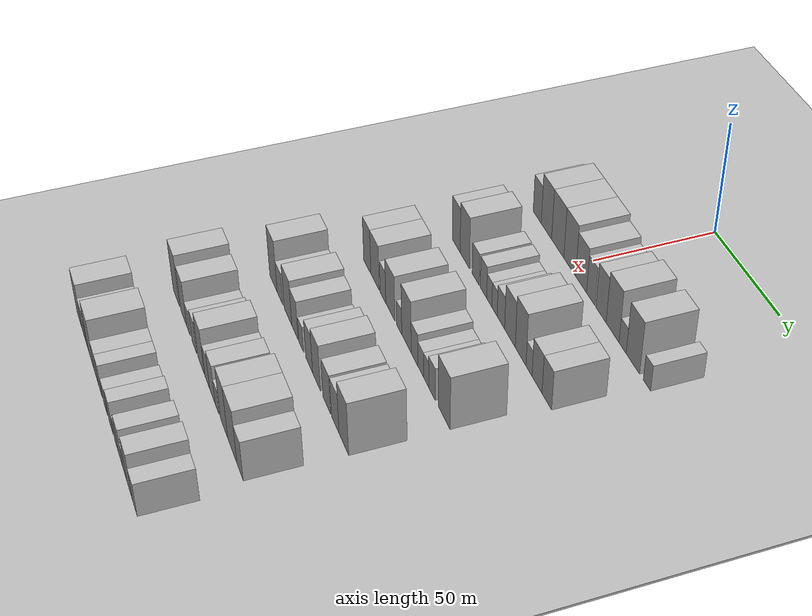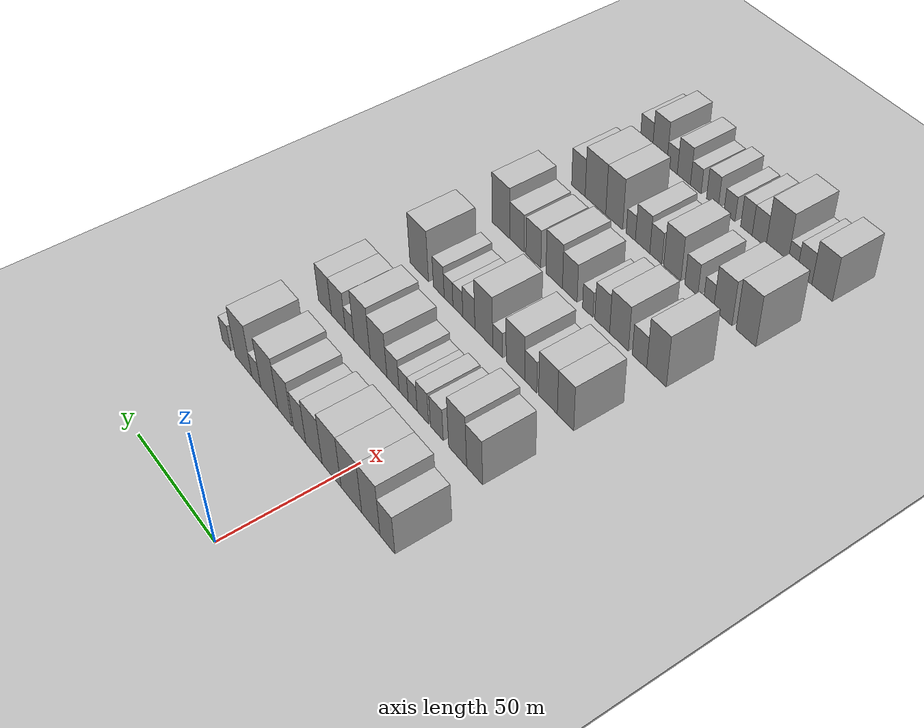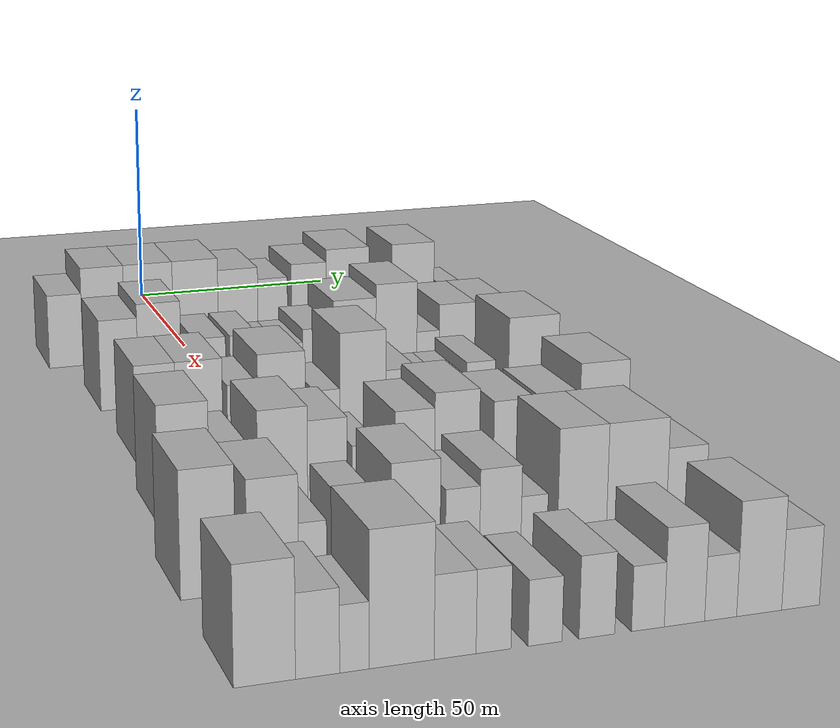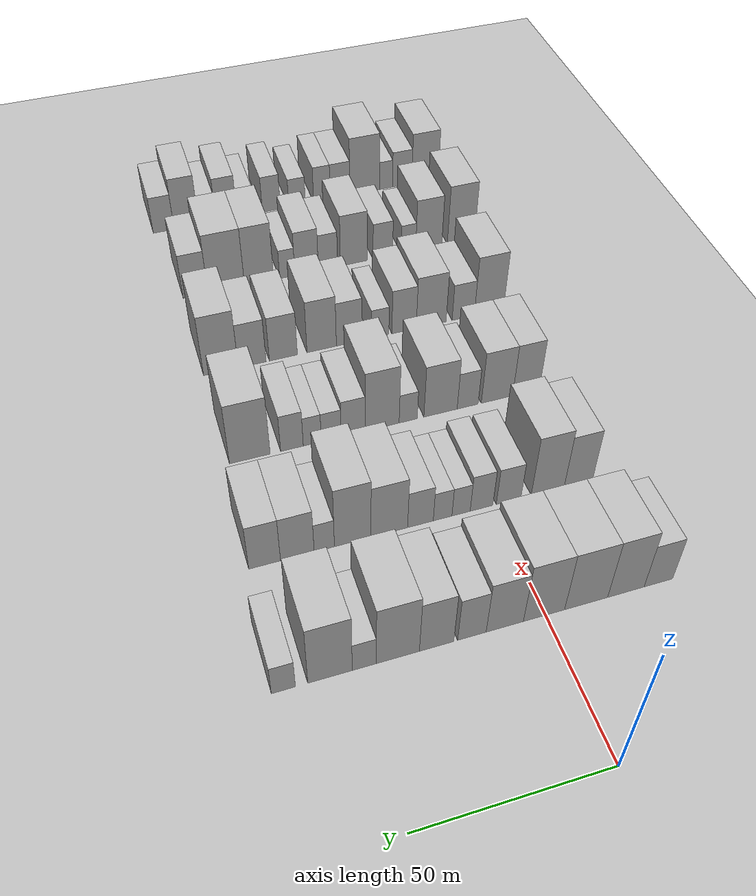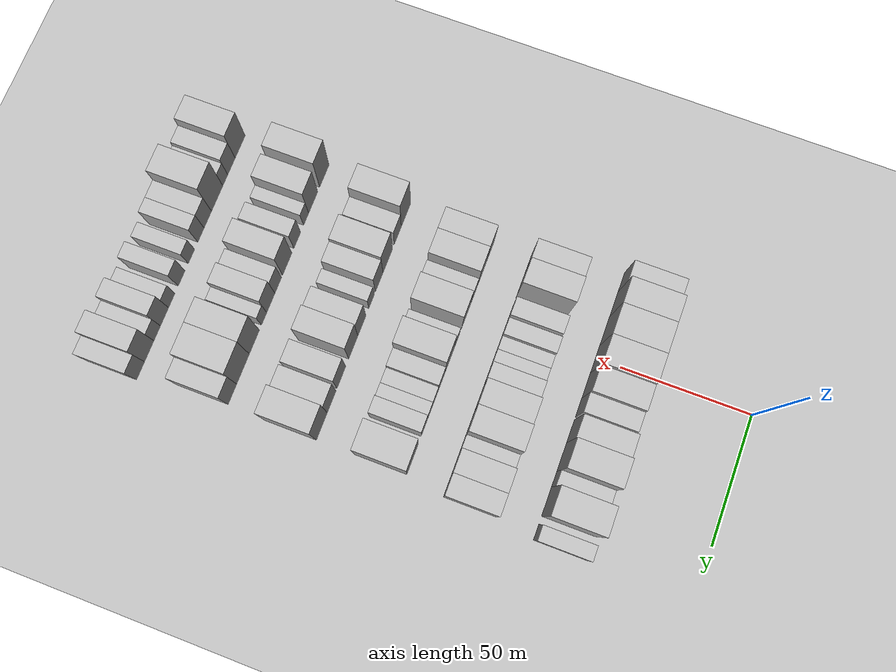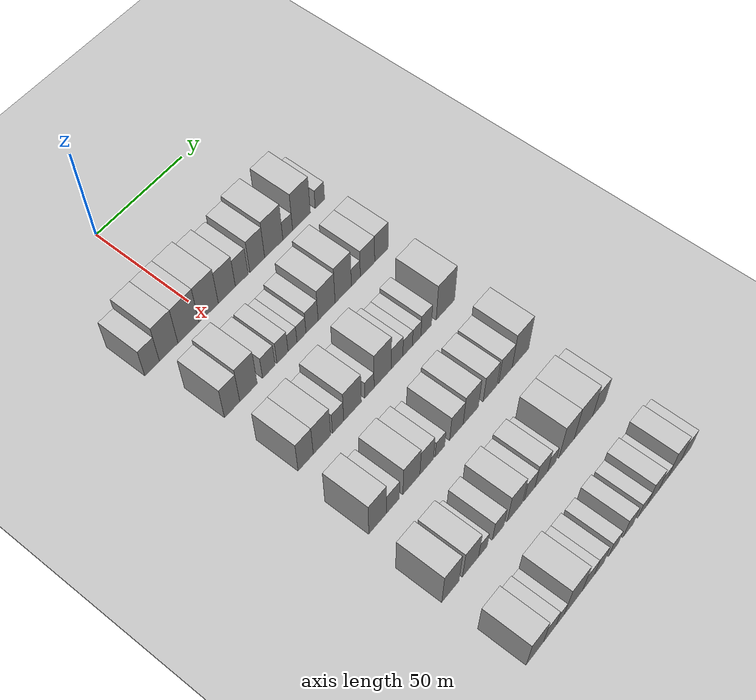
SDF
<sdf version="1.6">
 <world name="default">
  <include><name>ground_plane_1</name><uri>model://HANNAS_ground_plane</uri></include>
  <include>
   <name>ground_plane_2</name>
   <uri>model://HANNAS_ground_plane</uri>
   <pose>100 0 0  0 0 0</pose>
  </include>
  <model name="building_55">
   <static>1</static>
   <pose>50.0000 -30.7081 0 0.000000 0.000000 0.000000</pose>
   <link name="link">
    <pose>0 0 9.00 0 0 0</pose>
    <collision name="collision"><geometry><box><size>20.0000 7.9828 18.0000</size></box></geometry></collision>
    <visual name="visual">
     <cast_shadows>0</cast_shadows>
     <geometry><box><size>20.0000 7.9828 18.0000</size></box></geometry>
     <material>
      <script>
       <uri>model://HANNAS_wall/materials/scripts</uri>
       <uri>model://HANNAS_wall/materials/textures</uri>
       <name>vrc/HANNAS_wall</name>
      </script>
     </material>
    </visual>
   </link>
  </model>
  <model name="building_56">
   <static>1</static>
   <pose>50.0000 -21.6612 0 0.000000 0.000000 0.000000</pose>
   <link name="link">
    <pose>0 0 12.00 0 0 0</pose>
    <collision name="collision"><geometry><box><size>20.0000 10.1111 24.0000</size></box></geometry></collision>
    <visual name="visual">
     <cast_shadows>0</cast_shadows>
     <geometry><box><size>20.0000 10.1111 24.0000</size></box></geometry>
     <material>
      <script>
       <uri>model://HANNAS_wall/materials/scripts</uri>
       <uri>model://HANNAS_wall/materials/textures</uri>
       <name>vrc/HANNAS_wall</name>
      </script>
     </material>
    </visual>
   </link>
  </model>
  <model name="building_57">
   <static>1</static>
   <pose>50.0000 -10.7391 0 0.000000 0.000000 0.000000</pose>
   <link name="link">
    <pose>0 0 12.00 0 0 0</pose>
    <collision name="collision"><geometry><box><size>20.0000 11.7331 24.0000</size></box></geometry></collision>
    <visual name="visual">
     <cast_shadows>0</cast_shadows>
     <geometry><box><size>20.0000 11.7331 24.0000</size></box></geometry>
     <material>
      <script>
       <uri>model://HANNAS_wall/materials/scripts</uri>
       <uri>model://HANNAS_wall/materials/textures</uri>
       <name>vrc/HANNAS_wall</name>
      </script>
     </material>
    </visual>
   </link>
  </model>
  <model name="building_58">
   <static>1</static>
   <pose>50.0000 0.6521 0 0.000000 0.000000 0.000000</pose>
   <link name="link">
    <pose>0 0 12.00 0 0 0</pose>
    <collision name="collision"><geometry><box><size>20.0000 11.0493 24.0000</size></box></geometry></collision>
    <visual name="visual">
     <cast_shadows>0</cast_shadows>
     <geometry><box><size>20.0000 11.0493 24.0000</size></box></geometry>
     <material>
      <script>
       <uri>model://HANNAS_wall/materials/scripts</uri>
       <uri>model://HANNAS_wall/materials/textures</uri>
       <name>vrc/HANNAS_wall</name>
      </script>
     </material>
    </visual>
   </link>
  </model>
  <model name="building_59">
   <static>1</static>
   <pose>50.0000 11.0912 0 0.000000 0.000000 0.000000</pose>
   <link name="link">
    <pose>0 0 10.50 0 0 0</pose>
    <collision name="collision"><geometry><box><size>20.0000 9.8289 21.0000</size></box></geometry></collision>
    <visual name="visual">
     <cast_shadows>0</cast_shadows>
     <geometry><box><size>20.0000 9.8289 21.0000</size></box></geometry>
     <material>
      <script>
       <uri>model://HANNAS_wall/materials/scripts</uri>
       <uri>model://HANNAS_wall/materials/textures</uri>
       <name>vrc/HANNAS_wall</name>
      </script>
     </material>
    </visual>
   </link>
  </model>
  <model name="building_60">
   <static>1</static>
   <pose>50.0000 19.7149 0 0.000000 0.000000 0.000000</pose>
   <link name="link">
    <pose>0 0 9.00 0 0 0</pose>
    <collision name="collision"><geometry><box><size>20.0000 7.4185 18.0000</size></box></geometry></collision>
    <visual name="visual">
     <cast_shadows>0</cast_shadows>
     <geometry><box><size>20.0000 7.4185 18.0000</size></box></geometry>
     <material>
      <script>
       <uri>model://HANNAS_wall/materials/scripts</uri>
       <uri>model://HANNAS_wall/materials/textures</uri>
       <name>vrc/HANNAS_wall</name>
      </script>
     </material>
    </visual>
   </link>
  </model>
  <model name="building_61">
   <static>1</static>
   <pose>50.0000 28.8338 0 0.000000 0.000000 0.000000</pose>
   <link name="link">
    <pose>0 0 10.50 0 0 0</pose>
    <collision name="collision"><geometry><box><size>20.0000 8.8193 21.0000</size></box></geometry></collision>
    <visual name="visual">
     <cast_shadows>0</cast_shadows>
     <geometry><box><size>20.0000 8.8193 21.0000</size></box></geometry>
     <material>
      <script>
       <uri>model://HANNAS_wall/materials/scripts</uri>
       <uri>model://HANNAS_wall/materials/textures</uri>
       <name>vrc/HANNAS_wall</name>
      </script>
     </material>
    </visual>
   </link>
  </model>
  <model name="building_62">
   <static>1</static>
   <pose>50.0000 38.7204 0 0.000000 0.000000 0.000000</pose>
   <link name="link">
    <pose>0 0 12.00 0 0 0</pose>
    <collision name="collision"><geometry><box><size>20.0000 10.9539 24.0000</size></box></geometry></collision>
    <visual name="visual">
     <cast_shadows>0</cast_shadows>
     <geometry><box><size>20.0000 10.9539 24.0000</size></box></geometry>
     <material>
      <script>
       <uri>model://HANNAS_wall/materials/scripts</uri>
       <uri>model://HANNAS_wall/materials/textures</uri>
       <name>vrc/HANNAS_wall</name>
      </script>
     </material>
    </visual>
   </link>
  </model>
  <model name="building_63">
   <static>1</static>
   <pose>50.0000 47.1609 0 0.000000 0.000000 0.000000</pose>
   <link name="link">
    <pose>0 0 6.00 0 0 0</pose>
    <collision name="collision"><geometry><box><size>20.0000 5.9271 12.0000</size></box></geometry></collision>
    <visual name="visual">
     <cast_shadows>0</cast_shadows>
     <geometry><box><size>20.0000 5.9271 12.0000</size></box></geometry>
     <material>
      <script>
       <uri>model://HANNAS_wall/materials/scripts</uri>
       <uri>model://HANNAS_wall/materials/textures</uri>
       <name>vrc/HANNAS_wall</name>
      </script>
     </material>
    </visual>
   </link>
  </model>
  <model name="building_64">
   <static>1</static>
   <pose>50.0000 55.5924 0 0.000000 0.000000 0.000000</pose>
   <link name="link">
    <pose>0 0 12.00 0 0 0</pose>
    <collision name="collision"><geometry><box><size>20.0000 10.9358 24.0000</size></box></geometry></collision>
    <visual name="visual">
     <cast_shadows>0</cast_shadows>
     <geometry><box><size>20.0000 10.9358 24.0000</size></box></geometry>
     <material>
      <script>
       <uri>model://HANNAS_wall/materials/scripts</uri>
       <uri>model://HANNAS_wall/materials/textures</uri>
       <name>vrc/HANNAS_wall</name>
      </script>
     </material>
    </visual>
   </link>
  </model>
  <model name="building_65">
   <static>1</static>
   <pose>50.0000 66.9774 0 0.000000 0.000000 0.000000</pose>
   <link name="link">
    <pose>0 0 6.00 0 0 0</pose>
    <collision name="collision"><geometry><box><size>20.0000 5.8342 12.0000</size></box></geometry></collision>
    <visual name="visual">
     <cast_shadows>0</cast_shadows>
     <geometry><box><size>20.0000 5.8342 12.0000</size></box></geometry>
     <material>
      <script>
       <uri>model://HANNAS_wall/materials/scripts</uri>
       <uri>model://HANNAS_wall/materials/textures</uri>
       <name>vrc/HANNAS_wall</name>
      </script>
     </material>
    </visual>
   </link>
  </model>
  <model name="building_188">
   <static>1</static>
   <pose>85.0000 -24.9480 0 0.000000 0.000000 0.000000</pose>
   <link name="link">
    <pose>0 0 10.50 0 0 0</pose>
    <collision name="collision"><geometry><box><size>20.0000 8.4653 21.0000</size></box></geometry></collision>
    <visual name="visual">
     <cast_shadows>0</cast_shadows>
     <geometry><box><size>20.0000 8.4653 21.0000</size></box></geometry>
     <material>
      <script>
       <uri>model://HANNAS_wall/materials/scripts</uri>
       <uri>model://HANNAS_wall/materials/textures</uri>
       <name>vrc/HANNAS_wall</name>
      </script>
     </material>
    </visual>
   </link>
  </model>
  <model name="building_189">
   <static>1</static>
   <pose>85.0000 -15.8539 0 0.000000 0.000000 0.000000</pose>
   <link name="link">
    <pose>0 0 12.00 0 0 0</pose>
    <collision name="collision"><geometry><box><size>20.0000 9.7229 24.0000</size></box></geometry></collision>
    <visual name="visual">
     <cast_shadows>0</cast_shadows>
     <geometry><box><size>20.0000 9.7229 24.0000</size></box></geometry>
     <material>
      <script>
       <uri>model://HANNAS_wall/materials/scripts</uri>
       <uri>model://HANNAS_wall/materials/textures</uri>
       <name>vrc/HANNAS_wall</name>
      </script>
     </material>
    </visual>
   </link>
  </model>
  <model name="building_190">
   <static>1</static>
   <pose>85.0000 -4.4233 0 0.000000 0.000000 0.000000</pose>
   <link name="link">
    <pose>0 0 7.50 0 0 0</pose>
    <collision name="collision"><geometry><box><size>20.0000 7.1381 15.0000</size></box></geometry></collision>
    <visual name="visual">
     <cast_shadows>0</cast_shadows>
     <geometry><box><size>20.0000 7.1381 15.0000</size></box></geometry>
     <material>
      <script>
       <uri>model://HANNAS_wall/materials/scripts</uri>
       <uri>model://HANNAS_wall/materials/textures</uri>
       <name>vrc/HANNAS_wall</name>
      </script>
     </material>
    </visual>
   </link>
  </model>
  <model name="building_191">
   <static>1</static>
   <pose>85.0000 3.3822 0 0.000000 0.000000 0.000000</pose>
   <link name="link">
    <pose>0 0 7.50 0 0 0</pose>
    <collision name="collision"><geometry><box><size>20.0000 6.4730 15.0000</size></box></geometry></collision>
    <visual name="visual">
     <cast_shadows>0</cast_shadows>
     <geometry><box><size>20.0000 6.4730 15.0000</size></box></geometry>
     <material>
      <script>
       <uri>model://HANNAS_wall/materials/scripts</uri>
       <uri>model://HANNAS_wall/materials/textures</uri>
       <name>vrc/HANNAS_wall</name>
      </script>
     </material>
    </visual>
   </link>
  </model>
  <model name="building_192">
   <static>1</static>
   <pose>85.0000 9.2058 0 0.000000 0.000000 0.000000</pose>
   <link name="link">
    <pose>0 0 6.00 0 0 0</pose>
    <collision name="collision"><geometry><box><size>20.0000 5.1743 12.0000</size></box></geometry></collision>
    <visual name="visual">
     <cast_shadows>0</cast_shadows>
     <geometry><box><size>20.0000 5.1743 12.0000</size></box></geometry>
     <material>
      <script>
       <uri>model://HANNAS_wall/materials/scripts</uri>
       <uri>model://HANNAS_wall/materials/textures</uri>
       <name>vrc/HANNAS_wall</name>
      </script>
     </material>
    </visual>
   </link>
  </model>
  <model name="building_193">
   <static>1</static>
   <pose>85.0000 14.4256 0 0.000000 0.000000 0.000000</pose>
   <link name="link">
    <pose>0 0 6.00 0 0 0</pose>
    <collision name="collision"><geometry><box><size>20.0000 5.2652 12.0000</size></box></geometry></collision>
    <visual name="visual">
     <cast_shadows>0</cast_shadows>
     <geometry><box><size>20.0000 5.2652 12.0000</size></box></geometry>
     <material>
      <script>
       <uri>model://HANNAS_wall/materials/scripts</uri>
       <uri>model://HANNAS_wall/materials/textures</uri>
       <name>vrc/HANNAS_wall</name>
      </script>
     </material>
    </visual>
   </link>
  </model>
  <model name="building_194">
   <static>1</static>
   <pose>85.0000 20.6503 0 0.000000 0.000000 0.000000</pose>
   <link name="link">
    <pose>0 0 7.50 0 0 0</pose>
    <collision name="collision"><geometry><box><size>20.0000 7.1842 15.0000</size></box></geometry></collision>
    <visual name="visual">
     <cast_shadows>0</cast_shadows>
     <geometry><box><size>20.0000 7.1842 15.0000</size></box></geometry>
     <material>
      <script>
       <uri>model://HANNAS_wall/materials/scripts</uri>
       <uri>model://HANNAS_wall/materials/textures</uri>
       <name>vrc/HANNAS_wall</name>
      </script>
     </material>
    </visual>
   </link>
  </model>
  <model name="building_195">
   <static>1</static>
   <pose>85.0000 29.2987 0 0.000000 0.000000 0.000000</pose>
   <link name="link">
    <pose>0 0 10.50 0 0 0</pose>
    <collision name="collision"><geometry><box><size>20.0000 10.1127 21.0000</size></box></geometry></collision>
    <visual name="visual">
     <cast_shadows>0</cast_shadows>
     <geometry><box><size>20.0000 10.1127 21.0000</size></box></geometry>
     <material>
      <script>
       <uri>model://HANNAS_wall/materials/scripts</uri>
       <uri>model://HANNAS_wall/materials/textures</uri>
       <name>vrc/HANNAS_wall</name>
      </script>
     </material>
    </visual>
   </link>
  </model>
  <model name="building_196">
   <static>1</static>
   <pose>85.0000 39.3096 0 0.000000 0.000000 0.000000</pose>
   <link name="link">
    <pose>0 0 12.00 0 0 0</pose>
    <collision name="collision"><geometry><box><size>20.0000 9.9090 24.0000</size></box></geometry></collision>
    <visual name="visual">
     <cast_shadows>0</cast_shadows>
     <geometry><box><size>20.0000 9.9090 24.0000</size></box></geometry>
     <material>
      <script>
       <uri>model://HANNAS_wall/materials/scripts</uri>
       <uri>model://HANNAS_wall/materials/textures</uri>
       <name>vrc/HANNAS_wall</name>
      </script>
     </material>
    </visual>
   </link>
  </model>
  <model name="building_197">
   <static>1</static>
   <pose>85.0000 46.9934 0 0.000000 0.000000 0.000000</pose>
   <link name="link">
    <pose>0 0 6.00 0 0 0</pose>
    <collision name="collision"><geometry><box><size>20.0000 5.4587 12.0000</size></box></geometry></collision>
    <visual name="visual">
     <cast_shadows>0</cast_shadows>
     <geometry><box><size>20.0000 5.4587 12.0000</size></box></geometry>
     <material>
      <script>
       <uri>model://HANNAS_wall/materials/scripts</uri>
       <uri>model://HANNAS_wall/materials/textures</uri>
       <name>vrc/HANNAS_wall</name>
      </script>
     </material>
    </visual>
   </link>
  </model>
  <model name="building_198">
   <static>1</static>
   <pose>85.0000 54.1948 0 0.000000 0.000000 0.000000</pose>
   <link name="link">
    <pose>0 0 9.00 0 0 0</pose>
    <collision name="collision"><geometry><box><size>20.0000 8.9439 18.0000</size></box></geometry></collision>
    <visual name="visual">
     <cast_shadows>0</cast_shadows>
     <geometry><box><size>20.0000 8.9439 18.0000</size></box></geometry>
     <material>
      <script>
       <uri>model://HANNAS_wall/materials/scripts</uri>
       <uri>model://HANNAS_wall/materials/textures</uri>
       <name>vrc/HANNAS_wall</name>
      </script>
     </material>
    </visual>
   </link>
  </model>
  <model name="building_199">
   <static>1</static>
   <pose>85.0000 62.8538 0 0.000000 0.000000 0.000000</pose>
   <link name="link">
    <pose>0 0 9.00 0 0 0</pose>
    <collision name="collision"><geometry><box><size>20.0000 8.3741 18.0000</size></box></geometry></collision>
    <visual name="visual">
     <cast_shadows>0</cast_shadows>
     <geometry><box><size>20.0000 8.3741 18.0000</size></box></geometry>
     <material>
      <script>
       <uri>model://HANNAS_wall/materials/scripts</uri>
       <uri>model://HANNAS_wall/materials/textures</uri>
       <name>vrc/HANNAS_wall</name>
      </script>
     </material>
    </visual>
   </link>
  </model>
  <model name="building_306">
   <static>1</static>
   <pose>120.0000 -24.4343 0 0.000000 0.000000 0.000000</pose>
   <link name="link">
    <pose>0 0 10.50 0 0 0</pose>
    <collision name="collision"><geometry><box><size>20.0000 8.4505 21.0000</size></box></geometry></collision>
    <visual name="visual">
     <cast_shadows>0</cast_shadows>
     <geometry><box><size>20.0000 8.4505 21.0000</size></box></geometry>
     <material>
      <script>
       <uri>model://HANNAS_wall/materials/scripts</uri>
       <uri>model://HANNAS_wall/materials/textures</uri>
       <name>vrc/HANNAS_wall</name>
      </script>
     </material>
    </visual>
   </link>
  </model>
  <model name="building_307">
   <static>1</static>
   <pose>120.0000 -15.3014 0 0.000000 0.000000 0.000000</pose>
   <link name="link">
    <pose>0 0 10.50 0 0 0</pose>
    <collision name="collision"><geometry><box><size>20.0000 9.8154 21.0000</size></box></geometry></collision>
    <visual name="visual">
     <cast_shadows>0</cast_shadows>
     <geometry><box><size>20.0000 9.8154 21.0000</size></box></geometry>
     <material>
      <script>
       <uri>model://HANNAS_wall/materials/scripts</uri>
       <uri>model://HANNAS_wall/materials/textures</uri>
       <name>vrc/HANNAS_wall</name>
      </script>
     </material>
    </visual>
   </link>
  </model>
  <model name="building_308">
   <static>1</static>
   <pose>120.0000 -6.1564 0 0.000000 0.000000 0.000000</pose>
   <link name="link">
    <pose>0 0 7.50 0 0 0</pose>
    <collision name="collision"><geometry><box><size>20.0000 6.4744 15.0000</size></box></geometry></collision>
    <visual name="visual">
     <cast_shadows>0</cast_shadows>
     <geometry><box><size>20.0000 6.4744 15.0000</size></box></geometry>
     <material>
      <script>
       <uri>model://HANNAS_wall/materials/scripts</uri>
       <uri>model://HANNAS_wall/materials/textures</uri>
       <name>vrc/HANNAS_wall</name>
      </script>
     </material>
    </visual>
   </link>
  </model>
  <model name="building_309">
   <static>1</static>
   <pose>120.0000 2.1796 0 0.000000 0.000000 0.000000</pose>
   <link name="link">
    <pose>0 0 10.50 0 0 0</pose>
    <collision name="collision"><geometry><box><size>20.0000 10.1977 21.0000</size></box></geometry></collision>
    <visual name="visual">
     <cast_shadows>0</cast_shadows>
     <geometry><box><size>20.0000 10.1977 21.0000</size></box></geometry>
     <material>
      <script>
       <uri>model://HANNAS_wall/materials/scripts</uri>
       <uri>model://HANNAS_wall/materials/textures</uri>
       <name>vrc/HANNAS_wall</name>
      </script>
     </material>
    </visual>
   </link>
  </model>
  <model name="building_310">
   <static>1</static>
   <pose>120.0000 12.0316 0 0.000000 0.000000 0.000000</pose>
   <link name="link">
    <pose>0 0 6.00 0 0 0</pose>
    <collision name="collision"><geometry><box><size>20.0000 5.5062 12.0000</size></box></geometry></collision>
    <visual name="visual">
     <cast_shadows>0</cast_shadows>
     <geometry><box><size>20.0000 5.5062 12.0000</size></box></geometry>
     <material>
      <script>
       <uri>model://HANNAS_wall/materials/scripts</uri>
       <uri>model://HANNAS_wall/materials/textures</uri>
       <name>vrc/HANNAS_wall</name>
      </script>
     </material>
    </visual>
   </link>
  </model>
  <model name="building_311">
   <static>1</static>
   <pose>120.0000 19.8864 0 0.000000 0.000000 0.000000</pose>
   <link name="link">
    <pose>0 0 12.00 0 0 0</pose>
    <collision name="collision"><geometry><box><size>20.0000 10.2034 24.0000</size></box></geometry></collision>
    <visual name="visual">
     <cast_shadows>0</cast_shadows>
     <geometry><box><size>20.0000 10.2034 24.0000</size></box></geometry>
     <material>
      <script>
       <uri>model://HANNAS_wall/materials/scripts</uri>
       <uri>model://HANNAS_wall/materials/textures</uri>
       <name>vrc/HANNAS_wall</name>
      </script>
     </material>
    </visual>
   </link>
  </model>
  <model name="building_312">
   <static>1</static>
   <pose>120.0000 28.5121 0 0.000000 0.000000 0.000000</pose>
   <link name="link">
    <pose>0 0 7.50 0 0 0</pose>
    <collision name="collision"><geometry><box><size>20.0000 7.0480 15.0000</size></box></geometry></collision>
    <visual name="visual">
     <cast_shadows>0</cast_shadows>
     <geometry><box><size>20.0000 7.0480 15.0000</size></box></geometry>
     <material>
      <script>
       <uri>model://HANNAS_wall/materials/scripts</uri>
       <uri>model://HANNAS_wall/materials/textures</uri>
       <name>vrc/HANNAS_wall</name>
      </script>
     </material>
    </visual>
   </link>
  </model>
  <model name="building_313">
   <static>1</static>
   <pose>120.0000 34.9559 0 0.000000 0.000000 0.000000</pose>
   <link name="link">
    <pose>0 0 6.00 0 0 0</pose>
    <collision name="collision"><geometry><box><size>20.0000 5.8396 12.0000</size></box></geometry></collision>
    <visual name="visual">
     <cast_shadows>0</cast_shadows>
     <geometry><box><size>20.0000 5.8396 12.0000</size></box></geometry>
     <material>
      <script>
       <uri>model://HANNAS_wall/materials/scripts</uri>
       <uri>model://HANNAS_wall/materials/textures</uri>
       <name>vrc/HANNAS_wall</name>
      </script>
     </material>
    </visual>
   </link>
  </model>
  <model name="building_314">
   <static>1</static>
   <pose>120.0000 40.4903 0 0.000000 0.000000 0.000000</pose>
   <link name="link">
    <pose>0 0 6.00 0 0 0</pose>
    <collision name="collision"><geometry><box><size>20.0000 5.2292 12.0000</size></box></geometry></collision>
    <visual name="visual">
     <cast_shadows>0</cast_shadows>
     <geometry><box><size>20.0000 5.2292 12.0000</size></box></geometry>
     <material>
      <script>
       <uri>model://HANNAS_wall/materials/scripts</uri>
       <uri>model://HANNAS_wall/materials/textures</uri>
       <name>vrc/HANNAS_wall</name>
      </script>
     </material>
    </visual>
   </link>
  </model>
  <model name="building_315">
   <static>1</static>
   <pose>120.0000 46.3773 0 0.000000 0.000000 0.000000</pose>
   <link name="link">
    <pose>0 0 7.50 0 0 0</pose>
    <collision name="collision"><geometry><box><size>20.0000 6.5448 15.0000</size></box></geometry></collision>
    <visual name="visual">
     <cast_shadows>0</cast_shadows>
     <geometry><box><size>20.0000 6.5448 15.0000</size></box></geometry>
     <material>
      <script>
       <uri>model://HANNAS_wall/materials/scripts</uri>
       <uri>model://HANNAS_wall/materials/textures</uri>
       <name>vrc/HANNAS_wall</name>
      </script>
     </material>
    </visual>
   </link>
  </model>
  <model name="building_316">
   <static>1</static>
   <pose>120.0000 58.4431 0 0.000000 0.000000 0.000000</pose>
   <link name="link">
    <pose>0 0 12.00 0 0 0</pose>
    <collision name="collision"><geometry><box><size>20.0000 11.5869 24.0000</size></box></geometry></collision>
    <visual name="visual">
     <cast_shadows>0</cast_shadows>
     <geometry><box><size>20.0000 11.5869 24.0000</size></box></geometry>
     <material>
      <script>
       <uri>model://HANNAS_wall/materials/scripts</uri>
       <uri>model://HANNAS_wall/materials/textures</uri>
       <name>vrc/HANNAS_wall</name>
      </script>
     </material>
    </visual>
   </link>
  </model>
  <model name="building_428">
   <static>1</static>
   <pose>155.0000 -26.7871 0 0.000000 0.000000 0.000000</pose>
   <link name="link">
    <pose>0 0 12.00 0 0 0</pose>
    <collision name="collision"><geometry><box><size>20.0000 9.8530 24.0000</size></box></geometry></collision>
    <visual name="visual">
     <cast_shadows>0</cast_shadows>
     <geometry><box><size>20.0000 9.8530 24.0000</size></box></geometry>
     <material>
      <script>
       <uri>model://HANNAS_wall/materials/scripts</uri>
       <uri>model://HANNAS_wall/materials/textures</uri>
       <name>vrc/HANNAS_wall</name>
      </script>
     </material>
    </visual>
   </link>
  </model>
  <model name="building_429">
   <static>1</static>
   <pose>155.0000 -18.1608 0 0.000000 0.000000 0.000000</pose>
   <link name="link">
    <pose>0 0 7.50 0 0 0</pose>
    <collision name="collision"><geometry><box><size>20.0000 7.3995 15.0000</size></box></geometry></collision>
    <visual name="visual">
     <cast_shadows>0</cast_shadows>
     <geometry><box><size>20.0000 7.3995 15.0000</size></box></geometry>
     <material>
      <script>
       <uri>model://HANNAS_wall/materials/scripts</uri>
       <uri>model://HANNAS_wall/materials/textures</uri>
       <name>vrc/HANNAS_wall</name>
      </script>
     </material>
    </visual>
   </link>
  </model>
  <model name="building_430">
   <static>1</static>
   <pose>155.0000 -7.5324 0 0.000000 0.000000 0.000000</pose>
   <link name="link">
    <pose>0 0 10.50 0 0 0</pose>
    <collision name="collision"><geometry><box><size>20.0000 9.8574 21.0000</size></box></geometry></collision>
    <visual name="visual">
     <cast_shadows>0</cast_shadows>
     <geometry><box><size>20.0000 9.8574 21.0000</size></box></geometry>
     <material>
      <script>
       <uri>model://HANNAS_wall/materials/scripts</uri>
       <uri>model://HANNAS_wall/materials/textures</uri>
       <name>vrc/HANNAS_wall</name>
      </script>
     </material>
    </visual>
   </link>
  </model>
  <model name="building_431">
   <static>1</static>
   <pose>155.0000 1.3657 0 0.000000 0.000000 0.000000</pose>
   <link name="link">
    <pose>0 0 9.00 0 0 0</pose>
    <collision name="collision"><geometry><box><size>20.0000 7.9387 18.0000</size></box></geometry></collision>
    <visual name="visual">
     <cast_shadows>0</cast_shadows>
     <geometry><box><size>20.0000 7.9387 18.0000</size></box></geometry>
     <material>
      <script>
       <uri>model://HANNAS_wall/materials/scripts</uri>
       <uri>model://HANNAS_wall/materials/textures</uri>
       <name>vrc/HANNAS_wall</name>
      </script>
     </material>
    </visual>
   </link>
  </model>
  <model name="building_432">
   <static>1</static>
   <pose>155.0000 9.1701 0 0.000000 0.000000 0.000000</pose>
   <link name="link">
    <pose>0 0 6.00 0 0 0</pose>
    <collision name="collision"><geometry><box><size>20.0000 5.6703 12.0000</size></box></geometry></collision>
    <visual name="visual">
     <cast_shadows>0</cast_shadows>
     <geometry><box><size>20.0000 5.6703 12.0000</size></box></geometry>
     <material>
      <script>
       <uri>model://HANNAS_wall/materials/scripts</uri>
       <uri>model://HANNAS_wall/materials/textures</uri>
       <name>vrc/HANNAS_wall</name>
      </script>
     </material>
    </visual>
   </link>
  </model>
  <model name="building_433">
   <static>1</static>
   <pose>155.0000 19.0726 0 0.000000 0.000000 0.000000</pose>
   <link name="link">
    <pose>0 0 9.00 0 0 0</pose>
    <collision name="collision"><geometry><box><size>20.0000 8.1346 18.0000</size></box></geometry></collision>
    <visual name="visual">
     <cast_shadows>0</cast_shadows>
     <geometry><box><size>20.0000 8.1346 18.0000</size></box></geometry>
     <material>
      <script>
       <uri>model://HANNAS_wall/materials/scripts</uri>
       <uri>model://HANNAS_wall/materials/textures</uri>
       <name>vrc/HANNAS_wall</name>
      </script>
     </material>
    </visual>
   </link>
  </model>
  <model name="building_434">
   <static>1</static>
   <pose>155.0000 27.7882 0 0.000000 0.000000 0.000000</pose>
   <link name="link">
    <pose>0 0 10.50 0 0 0</pose>
    <collision name="collision"><geometry><box><size>20.0000 9.2966 21.0000</size></box></geometry></collision>
    <visual name="visual">
     <cast_shadows>0</cast_shadows>
     <geometry><box><size>20.0000 9.2966 21.0000</size></box></geometry>
     <material>
      <script>
       <uri>model://HANNAS_wall/materials/scripts</uri>
       <uri>model://HANNAS_wall/materials/textures</uri>
       <name>vrc/HANNAS_wall</name>
      </script>
     </material>
    </visual>
   </link>
  </model>
  <model name="building_435">
   <static>1</static>
   <pose>155.0000 39.7906 0 0.000000 0.000000 0.000000</pose>
   <link name="link">
    <pose>0 0 9.00 0 0 0</pose>
    <collision name="collision"><geometry><box><size>20.0000 8.7083 18.0000</size></box></geometry></collision>
    <visual name="visual">
     <cast_shadows>0</cast_shadows>
     <geometry><box><size>20.0000 8.7083 18.0000</size></box></geometry>
     <material>
      <script>
       <uri>model://HANNAS_wall/materials/scripts</uri>
       <uri>model://HANNAS_wall/materials/textures</uri>
       <name>vrc/HANNAS_wall</name>
      </script>
     </material>
    </visual>
   </link>
  </model>
  <model name="building_436">
   <static>1</static>
   <pose>155.0000 49.4117 0 0.000000 0.000000 0.000000</pose>
   <link name="link">
    <pose>0 0 9.00 0 0 0</pose>
    <collision name="collision"><geometry><box><size>20.0000 8.5338 18.0000</size></box></geometry></collision>
    <visual name="visual">
     <cast_shadows>0</cast_shadows>
     <geometry><box><size>20.0000 8.5338 18.0000</size></box></geometry>
     <material>
      <script>
       <uri>model://HANNAS_wall/materials/scripts</uri>
       <uri>model://HANNAS_wall/materials/textures</uri>
       <name>vrc/HANNAS_wall</name>
      </script>
     </material>
    </visual>
   </link>
  </model>
  <model name="building_437">
   <static>1</static>
   <pose>155.0000 58.9732 0 0.000000 0.000000 0.000000</pose>
   <link name="link">
    <pose>0 0 12.00 0 0 0</pose>
    <collision name="collision"><geometry><box><size>20.0000 10.5892 24.0000</size></box></geometry></collision>
    <visual name="visual">
     <cast_shadows>0</cast_shadows>
     <geometry><box><size>20.0000 10.5892 24.0000</size></box></geometry>
     <material>
      <script>
       <uri>model://HANNAS_wall/materials/scripts</uri>
       <uri>model://HANNAS_wall/materials/textures</uri>
       <name>vrc/HANNAS_wall</name>
      </script>
     </material>
    </visual>
   </link>
  </model>
  <model name="building_551">
   <static>1</static>
   <pose>190.0000 -30.7092 0 0.000000 0.000000 0.000000</pose>
   <link name="link">
    <pose>0 0 12.00 0 0 0</pose>
    <collision name="collision"><geometry><box><size>20.0000 9.7136 24.0000</size></box></geometry></collision>
    <visual name="visual">
     <cast_shadows>0</cast_shadows>
     <geometry><box><size>20.0000 9.7136 24.0000</size></box></geometry>
     <material>
      <script>
       <uri>model://HANNAS_wall/materials/scripts</uri>
       <uri>model://HANNAS_wall/materials/textures</uri>
       <name>vrc/HANNAS_wall</name>
      </script>
     </material>
    </visual>
   </link>
  </model>
  <model name="building_552">
   <static>1</static>
   <pose>190.0000 -19.2347 0 0.000000 0.000000 0.000000</pose>
   <link name="link">
    <pose>0 0 10.50 0 0 0</pose>
    <collision name="collision"><geometry><box><size>20.0000 9.2354 21.0000</size></box></geometry></collision>
    <visual name="visual">
     <cast_shadows>0</cast_shadows>
     <geometry><box><size>20.0000 9.2354 21.0000</size></box></geometry>
     <material>
      <script>
       <uri>model://HANNAS_wall/materials/scripts</uri>
       <uri>model://HANNAS_wall/materials/textures</uri>
       <name>vrc/HANNAS_wall</name>
      </script>
     </material>
    </visual>
   </link>
  </model>
  <model name="building_553">
   <static>1</static>
   <pose>190.0000 -12.0716 0 0.000000 0.000000 0.000000</pose>
   <link name="link">
    <pose>0 0 6.00 0 0 0</pose>
    <collision name="collision"><geometry><box><size>20.0000 5.0909 12.0000</size></box></geometry></collision>
    <visual name="visual">
     <cast_shadows>0</cast_shadows>
     <geometry><box><size>20.0000 5.0909 12.0000</size></box></geometry>
     <material>
      <script>
       <uri>model://HANNAS_wall/materials/scripts</uri>
       <uri>model://HANNAS_wall/materials/textures</uri>
       <name>vrc/HANNAS_wall</name>
      </script>
     </material>
    </visual>
   </link>
  </model>
  <model name="building_554">
   <static>1</static>
   <pose>190.0000 -3.1373 0 0.000000 0.000000 0.000000</pose>
   <link name="link">
    <pose>0 0 7.50 0 0 0</pose>
    <collision name="collision"><geometry><box><size>20.0000 6.7776 15.0000</size></box></geometry></collision>
    <visual name="visual">
     <cast_shadows>0</cast_shadows>
     <geometry><box><size>20.0000 6.7776 15.0000</size></box></geometry>
     <material>
      <script>
       <uri>model://HANNAS_wall/materials/scripts</uri>
       <uri>model://HANNAS_wall/materials/textures</uri>
       <name>vrc/HANNAS_wall</name>
      </script>
     </material>
    </visual>
   </link>
  </model>
  <model name="building_555">
   <static>1</static>
   <pose>190.0000 6.8501 0 0.000000 0.000000 0.000000</pose>
   <link name="link">
    <pose>0 0 10.50 0 0 0</pose>
    <collision name="collision"><geometry><box><size>20.0000 9.1972 21.0000</size></box></geometry></collision>
    <visual name="visual">
     <cast_shadows>0</cast_shadows>
     <geometry><box><size>20.0000 9.1972 21.0000</size></box></geometry>
     <material>
      <script>
       <uri>model://HANNAS_wall/materials/scripts</uri>
       <uri>model://HANNAS_wall/materials/textures</uri>
       <name>vrc/HANNAS_wall</name>
      </script>
     </material>
    </visual>
   </link>
  </model>
  <model name="building_556">
   <static>1</static>
   <pose>190.0000 15.7063 0 0.000000 0.000000 0.000000</pose>
   <link name="link">
    <pose>0 0 7.50 0 0 0</pose>
    <collision name="collision"><geometry><box><size>20.0000 6.5152 15.0000</size></box></geometry></collision>
    <visual name="visual">
     <cast_shadows>0</cast_shadows>
     <geometry><box><size>20.0000 6.5152 15.0000</size></box></geometry>
     <material>
      <script>
       <uri>model://HANNAS_wall/materials/scripts</uri>
       <uri>model://HANNAS_wall/materials/textures</uri>
       <name>vrc/HANNAS_wall</name>
      </script>
     </material>
    </visual>
   </link>
  </model>
  <model name="building_557">
   <static>1</static>
   <pose>190.0000 22.9255 0 0.000000 0.000000 0.000000</pose>
   <link name="link">
    <pose>0 0 9.00 0 0 0</pose>
    <collision name="collision"><geometry><box><size>20.0000 7.9232 18.0000</size></box></geometry></collision>
    <visual name="visual">
     <cast_shadows>0</cast_shadows>
     <geometry><box><size>20.0000 7.9232 18.0000</size></box></geometry>
     <material>
      <script>
       <uri>model://HANNAS_wall/materials/scripts</uri>
       <uri>model://HANNAS_wall/materials/textures</uri>
       <name>vrc/HANNAS_wall</name>
      </script>
     </material>
    </visual>
   </link>
  </model>
  <model name="building_558">
   <static>1</static>
   <pose>190.0000 29.4342 0 0.000000 0.000000 0.000000</pose>
   <link name="link">
    <pose>0 0 6.00 0 0 0</pose>
    <collision name="collision"><geometry><box><size>20.0000 5.0940 12.0000</size></box></geometry></collision>
    <visual name="visual">
     <cast_shadows>0</cast_shadows>
     <geometry><box><size>20.0000 5.0940 12.0000</size></box></geometry>
     <material>
      <script>
       <uri>model://HANNAS_wall/materials/scripts</uri>
       <uri>model://HANNAS_wall/materials/textures</uri>
       <name>vrc/HANNAS_wall</name>
      </script>
     </material>
    </visual>
   </link>
  </model>
  <model name="building_559">
   <static>1</static>
   <pose>190.0000 38.7987 0 0.000000 0.000000 0.000000</pose>
   <link name="link">
    <pose>0 0 12.00 0 0 0</pose>
    <collision name="collision"><geometry><box><size>20.0000 9.6351 24.0000</size></box></geometry></collision>
    <visual name="visual">
     <cast_shadows>0</cast_shadows>
     <geometry><box><size>20.0000 9.6351 24.0000</size></box></geometry>
     <material>
      <script>
       <uri>model://HANNAS_wall/materials/scripts</uri>
       <uri>model://HANNAS_wall/materials/textures</uri>
       <name>vrc/HANNAS_wall</name>
      </script>
     </material>
    </visual>
   </link>
  </model>
  <model name="building_560">
   <static>1</static>
   <pose>190.0000 49.6088 0 0.000000 0.000000 0.000000</pose>
   <link name="link">
    <pose>0 0 12.00 0 0 0</pose>
    <collision name="collision"><geometry><box><size>20.0000 11.9850 24.0000</size></box></geometry></collision>
    <visual name="visual">
     <cast_shadows>0</cast_shadows>
     <geometry><box><size>20.0000 11.9850 24.0000</size></box></geometry>
     <material>
      <script>
       <uri>model://HANNAS_wall/materials/scripts</uri>
       <uri>model://HANNAS_wall/materials/textures</uri>
       <name>vrc/HANNAS_wall</name>
      </script>
     </material>
    </visual>
   </link>
  </model>
  <model name="building_561">
   <static>1</static>
   <pose>190.0000 59.5992 0 0.000000 0.000000 0.000000</pose>
   <link name="link">
    <pose>0 0 9.00 0 0 0</pose>
    <collision name="collision"><geometry><box><size>20.0000 7.9959 18.0000</size></box></geometry></collision>
    <visual name="visual">
     <cast_shadows>0</cast_shadows>
     <geometry><box><size>20.0000 7.9959 18.0000</size></box></geometry>
     <material>
      <script>
       <uri>model://HANNAS_wall/materials/scripts</uri>
       <uri>model://HANNAS_wall/materials/textures</uri>
       <name>vrc/HANNAS_wall</name>
      </script>
     </material>
    </visual>
   </link>
  </model>
  <model name="building_682">
   <static>1</static>
   <pose>225.0000 -30.3202 0 0.000000 0.000000 0.000000</pose>
   <link name="link">
    <pose>0 0 10.50 0 0 0</pose>
    <collision name="collision"><geometry><box><size>20.0000 9.9785 21.0000</size></box></geometry></collision>
    <visual name="visual">
     <cast_shadows>0</cast_shadows>
     <geometry><box><size>20.0000 9.9785 21.0000</size></box></geometry>
     <material>
      <script>
       <uri>model://HANNAS_wall/materials/scripts</uri>
       <uri>model://HANNAS_wall/materials/textures</uri>
       <name>vrc/HANNAS_wall</name>
      </script>
     </material>
    </visual>
   </link>
  </model>
  <model name="building_683">
   <static>1</static>
   <pose>225.0000 -21.7272 0 0.000000 0.000000 0.000000</pose>
   <link name="link">
    <pose>0 0 7.50 0 0 0</pose>
    <collision name="collision"><geometry><box><size>20.0000 7.2075 15.0000</size></box></geometry></collision>
    <visual name="visual">
     <cast_shadows>0</cast_shadows>
     <geometry><box><size>20.0000 7.2075 15.0000</size></box></geometry>
     <material>
      <script>
       <uri>model://HANNAS_wall/materials/scripts</uri>
       <uri>model://HANNAS_wall/materials/textures</uri>
       <name>vrc/HANNAS_wall</name>
      </script>
     </material>
    </visual>
   </link>
  </model>
  <model name="building_684">
   <static>1</static>
   <pose>225.0000 -15.7066 0 0.000000 0.000000 0.000000</pose>
   <link name="link">
    <pose>0 0 6.00 0 0 0</pose>
    <collision name="collision"><geometry><box><size>20.0000 4.8336 12.0000</size></box></geometry></collision>
    <visual name="visual">
     <cast_shadows>0</cast_shadows>
     <geometry><box><size>20.0000 4.8336 12.0000</size></box></geometry>
     <material>
      <script>
       <uri>model://HANNAS_wall/materials/scripts</uri>
       <uri>model://HANNAS_wall/materials/textures</uri>
       <name>vrc/HANNAS_wall</name>
      </script>
     </material>
    </visual>
   </link>
  </model>
  <model name="building_685">
   <static>1</static>
   <pose>225.0000 -7.8204 0 0.000000 0.000000 0.000000</pose>
   <link name="link">
    <pose>0 0 12.00 0 0 0</pose>
    <collision name="collision"><geometry><box><size>20.0000 10.9388 24.0000</size></box></geometry></collision>
    <visual name="visual">
     <cast_shadows>0</cast_shadows>
     <geometry><box><size>20.0000 10.9388 24.0000</size></box></geometry>
     <material>
      <script>
       <uri>model://HANNAS_wall/materials/scripts</uri>
       <uri>model://HANNAS_wall/materials/textures</uri>
       <name>vrc/HANNAS_wall</name>
      </script>
     </material>
    </visual>
   </link>
  </model>
  <model name="building_686">
   <static>1</static>
   <pose>225.0000 1.2260 0 0.000000 0.000000 0.000000</pose>
   <link name="link">
    <pose>0 0 7.50 0 0 0</pose>
    <collision name="collision"><geometry><box><size>20.0000 7.1541 15.0000</size></box></geometry></collision>
    <visual name="visual">
     <cast_shadows>0</cast_shadows>
     <geometry><box><size>20.0000 7.1541 15.0000</size></box></geometry>
     <material>
      <script>
       <uri>model://HANNAS_wall/materials/scripts</uri>
       <uri>model://HANNAS_wall/materials/textures</uri>
       <name>vrc/HANNAS_wall</name>
      </script>
     </material>
    </visual>
   </link>
  </model>
  <model name="building_687">
   <static>1</static>
   <pose>225.0000 7.8064 0 0.000000 0.000000 0.000000</pose>
   <link name="link">
    <pose>0 0 7.50 0 0 0</pose>
    <collision name="collision"><geometry><box><size>20.0000 6.0068 15.0000</size></box></geometry></collision>
    <visual name="visual">
     <cast_shadows>0</cast_shadows>
     <geometry><box><size>20.0000 6.0068 15.0000</size></box></geometry>
     <material>
      <script>
       <uri>model://HANNAS_wall/materials/scripts</uri>
       <uri>model://HANNAS_wall/materials/textures</uri>
       <name>vrc/HANNAS_wall</name>
      </script>
     </material>
    </visual>
   </link>
  </model>
  <model name="building_688">
   <static>1</static>
   <pose>225.0000 16.7856 0 0.000000 0.000000 0.000000</pose>
   <link name="link">
    <pose>0 0 6.00 0 0 0</pose>
    <collision name="collision"><geometry><box><size>20.0000 5.9517 12.0000</size></box></geometry></collision>
    <visual name="visual">
     <cast_shadows>0</cast_shadows>
     <geometry><box><size>20.0000 5.9517 12.0000</size></box></geometry>
     <material>
      <script>
       <uri>model://HANNAS_wall/materials/scripts</uri>
       <uri>model://HANNAS_wall/materials/textures</uri>
       <name>vrc/HANNAS_wall</name>
      </script>
     </material>
    </visual>
   </link>
  </model>
  <model name="building_689">
   <static>1</static>
   <pose>225.0000 25.9552 0 0.000000 0.000000 0.000000</pose>
   <link name="link">
    <pose>0 0 7.50 0 0 0</pose>
    <collision name="collision"><geometry><box><size>20.0000 6.3875 15.0000</size></box></geometry></collision>
    <visual name="visual">
     <cast_shadows>0</cast_shadows>
     <geometry><box><size>20.0000 6.3875 15.0000</size></box></geometry>
     <material>
      <script>
       <uri>model://HANNAS_wall/materials/scripts</uri>
       <uri>model://HANNAS_wall/materials/textures</uri>
       <name>vrc/HANNAS_wall</name>
      </script>
     </material>
    </visual>
   </link>
  </model>
  <model name="building_690">
   <static>1</static>
   <pose>225.0000 35.1126 0 0.000000 0.000000 0.000000</pose>
   <link name="link">
    <pose>0 0 6.00 0 0 0</pose>
    <collision name="collision"><geometry><box><size>20.0000 5.9273 12.0000</size></box></geometry></collision>
    <visual name="visual">
     <cast_shadows>0</cast_shadows>
     <geometry><box><size>20.0000 5.9273 12.0000</size></box></geometry>
     <material>
      <script>
       <uri>model://HANNAS_wall/materials/scripts</uri>
       <uri>model://HANNAS_wall/materials/textures</uri>
       <name>vrc/HANNAS_wall</name>
      </script>
     </material>
    </visual>
   </link>
  </model>
  <model name="building_691">
   <static>1</static>
   <pose>225.0000 41.7808 0 0.000000 0.000000 0.000000</pose>
   <link name="link">
    <pose>0 0 9.00 0 0 0</pose>
    <collision name="collision"><geometry><box><size>20.0000 7.4090 18.0000</size></box></geometry></collision>
    <visual name="visual">
     <cast_shadows>0</cast_shadows>
     <geometry><box><size>20.0000 7.4090 18.0000</size></box></geometry>
     <material>
      <script>
       <uri>model://HANNAS_wall/materials/scripts</uri>
       <uri>model://HANNAS_wall/materials/textures</uri>
       <name>vrc/HANNAS_wall</name>
      </script>
     </material>
    </visual>
   </link>
  </model>
  <model name="building_692">
   <static>1</static>
   <pose>225.0000 48.4590 0 0.000000 0.000000 0.000000</pose>
   <link name="link">
    <pose>0 0 6.00 0 0 0</pose>
    <collision name="collision"><geometry><box><size>20.0000 5.9473 12.0000</size></box></geometry></collision>
    <visual name="visual">
     <cast_shadows>0</cast_shadows>
     <geometry><box><size>20.0000 5.9473 12.0000</size></box></geometry>
     <material>
      <script>
       <uri>model://HANNAS_wall/materials/scripts</uri>
       <uri>model://HANNAS_wall/materials/textures</uri>
       <name>vrc/HANNAS_wall</name>
      </script>
     </material>
    </visual>
   </link>
  </model>
  <model name="building_693">
   <static>1</static>
   <pose>225.0000 55.6685 0 0.000000 0.000000 0.000000</pose>
   <link name="link">
    <pose>0 0 10.50 0 0 0</pose>
    <collision name="collision"><geometry><box><size>20.0000 8.4716 21.0000</size></box></geometry></collision>
    <visual name="visual">
     <cast_shadows>0</cast_shadows>
     <geometry><box><size>20.0000 8.4716 21.0000</size></box></geometry>
     <material>
      <script>
       <uri>model://HANNAS_wall/materials/scripts</uri>
       <uri>model://HANNAS_wall/materials/textures</uri>
       <name>vrc/HANNAS_wall</name>
      </script>
     </material>
    </visual>
   </link>
  </model>
  <model name="building_694">
   <static>1</static>
   <pose>225.0000 63.4912 0 0.000000 0.000000 0.000000</pose>
   <link name="link">
    <pose>0 0 7.50 0 0 0</pose>
    <collision name="collision"><geometry><box><size>20.0000 7.1738 15.0000</size></box></geometry></collision>
    <visual name="visual">
     <cast_shadows>0</cast_shadows>
     <geometry><box><size>20.0000 7.1738 15.0000</size></box></geometry>
     <material>
      <script>
       <uri>model://HANNAS_wall/materials/scripts</uri>
       <uri>model://HANNAS_wall/materials/textures</uri>
       <name>vrc/HANNAS_wall</name>
      </script>
     </material>
    </visual>
   </link>
  </model>
 </world>
</sdf>
